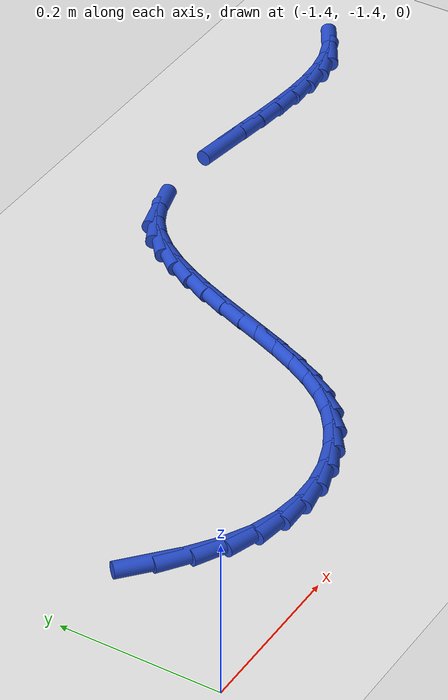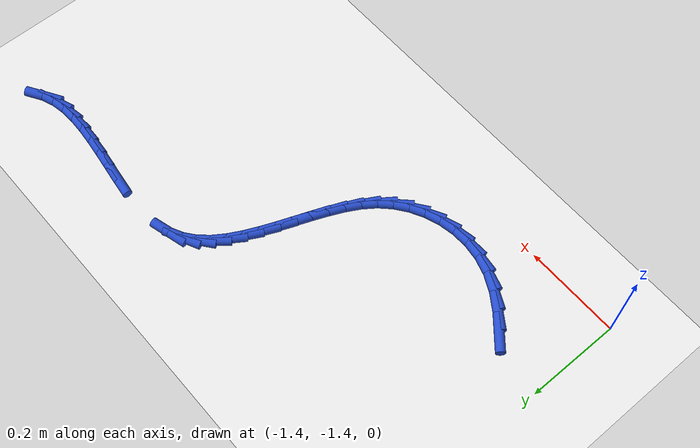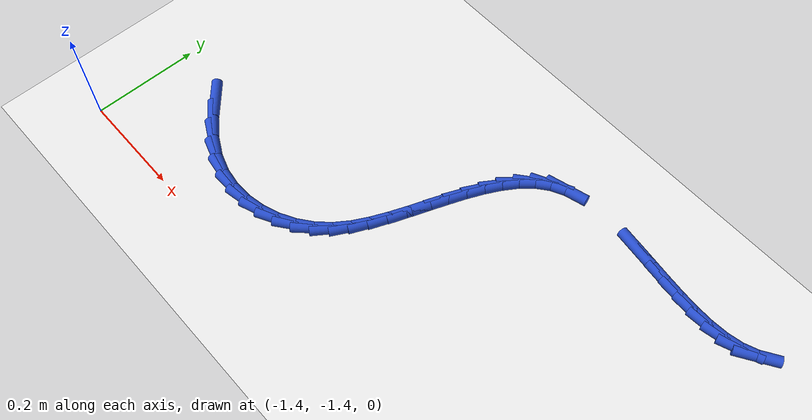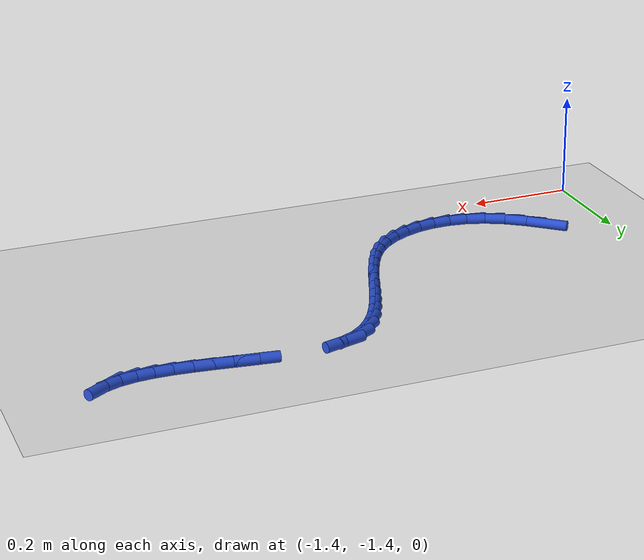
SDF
<sdf version="1.6">
 <world name="default">
  <model name="ground_plane">
   <static>1</static>
   <link name="link">
    <collision name="collision">
     <geometry><plane><normal>0 0 1</normal><size>100 100</size></plane></geometry>
     <surface><friction><ode><mu>100</mu><mu2>50</mu2></ode></friction></surface>
    </collision>
    <visual name="visual">
     <cast_shadows>0</cast_shadows>
     <geometry><plane><normal>0 0 1</normal><size>100 100</size></plane></geometry>
     <material>
      <script><uri>file://media/materials/scripts/gazebo.material</uri><name>Gazebo/WhiteGlow</name></script>
     </material>
    </visual>
   </link>
  </model>
  <model name="line">
   <link name="link_204">
    <pose>-1.2747357582555312 -1.2309211940022895 0.01 0 1.57 -0.7177747797868199</pose>
    <collision name="collision">
     <geometry><cylinder><radius>0.01</radius><length>0.08</length></cylinder></geometry>
    </collision>
    <visual name="visual">
     <material>
      <script><name>Gazebo/Blue</name><uri>file://media/materials/scripts/gazebo.material</uri></script>
     </material>
     <geometry><cylinder><radius>0.01</radius><length>0.08</length></cylinder></geometry>
    </visual>
   </link>
   <link name="link_205">
    <pose>-1.2416538626119809 -1.2598062738995015 0.01 0 1.57 -0.6163822276789551</pose>
    <collision name="collision">
     <geometry><cylinder><radius>0.01</radius><length>0.08</length></cylinder></geometry>
    </collision>
    <visual name="visual">
     <material>
      <script><name>Gazebo/Blue</name><uri>file://media/materials/scripts/gazebo.material</uri></script>
     </material>
     <geometry><cylinder><radius>0.01</radius><length>0.08</length></cylinder></geometry>
    </visual>
   </link>
   <link name="link_206">
    <pose>-1.2074891528682192 -1.2840106528345832 0.01 0 1.57 -0.4778129727852981</pose>
    <collision name="collision">
     <geometry><cylinder><radius>0.01</radius><length>0.08</length></cylinder></geometry>
    </collision>
    <visual name="visual">
     <material>
      <script><name>Gazebo/Blue</name><uri>file://media/materials/scripts/gazebo.material</uri></script>
     </material>
     <geometry><cylinder><radius>0.01</radius><length>0.08</length></cylinder></geometry>
    </visual>
   </link>
   <link name="link_207">
    <pose>-1.1724446965962085 -1.3021578712209303 0.01 0 1.57 -0.30827228383824723</pose>
    <collision name="collision">
     <geometry><cylinder><radius>0.01</radius><length>0.08</length></cylinder></geometry>
    </collision>
    <visual name="visual">
     <material>
      <script><name>Gazebo/Blue</name><uri>file://media/materials/scripts/gazebo.material</uri></script>
     </material>
     <geometry><cylinder><radius>0.01</radius><length>0.08</length></cylinder></geometry>
    </visual>
   </link>
   <link name="link_208">
    <pose>-1.1368587599532027 -1.3134892718625613 0.01 0 1.57 -0.13698847188008131</pose>
    <collision name="collision">
     <geometry><cylinder><radius>0.01</radius><length>0.08</length></cylinder></geometry>
    </collision>
    <visual name="visual">
     <material>
      <script><name>Gazebo/Blue</name><uri>file://media/materials/scripts/gazebo.material</uri></script>
     </material>
     <geometry><cylinder><radius>0.01</radius><length>0.08</length></cylinder></geometry>
    </visual>
   </link>
   <link name="link_209">
    <pose>-1.1013195696110947 -1.3183884151627252 0.01 0 1.57 0.02940968667789065</pose>
    <collision name="collision">
     <geometry><cylinder><radius>0.01</radius><length>0.08</length></cylinder></geometry>
    </collision>
    <visual name="visual">
     <material>
      <script><name>Gazebo/Blue</name><uri>file://media/materials/scripts/gazebo.material</uri></script>
     </material>
     <geometry><cylinder><radius>0.01</radius><length>0.08</length></cylinder></geometry>
    </visual>
   </link>
   <link name="link_210">
    <pose>-1.0664423854532337 -1.3173623922748308 0.01 0 1.57 0.18948813860903968</pose>
    <collision name="collision">
     <geometry><cylinder><radius>0.01</radius><length>0.08</length></cylinder></geometry>
    </collision>
    <visual name="visual">
     <material>
      <script><name>Gazebo/Blue</name><uri>file://media/materials/scripts/gazebo.material</uri></script>
     </material>
     <geometry><cylinder><radius>0.01</radius><length>0.08</length></cylinder></geometry>
    </visual>
   </link>
   <link name="link_211">
    <pose>-1.0328424673629635 -1.3109182943522866 0.01 0 1.57 0.3438911318449691</pose>
    <collision name="collision">
     <geometry><cylinder><radius>0.01</radius><length>0.08</length></cylinder></geometry>
    </collision>
    <visual name="visual">
     <material>
      <script><name>Gazebo/Blue</name><uri>file://media/materials/scripts/gazebo.material</uri></script>
     </material>
     <geometry><cylinder><radius>0.01</radius><length>0.08</length></cylinder></geometry>
    </visual>
   </link>
   <link name="link_212">
    <pose>-1.0011350752236337 -1.299563212548502 0.01 0 1.57 0.49489955885718473</pose>
    <collision name="collision">
     <geometry><cylinder><radius>0.01</radius><length>0.08</length></cylinder></geometry>
    </collision>
    <visual name="visual">
     <material>
      <script><name>Gazebo/Blue</name><uri>file://media/materials/scripts/gazebo.material</uri></script>
     </material>
     <geometry><cylinder><radius>0.01</radius><length>0.08</length></cylinder></geometry>
    </visual>
   </link>
   <link name="link_213">
    <pose>-0.9719354689185896 -1.2838042380168866 0.01 0 1.57 0.6459106959597302</pose>
    <collision name="collision">
     <geometry><cylinder><radius>0.01</radius><length>0.08</length></cylinder></geometry>
    </collision>
    <visual name="visual">
     <material>
      <script><name>Gazebo/Blue</name><uri>file://media/materials/scripts/gazebo.material</uri></script>
     </material>
     <geometry><cylinder><radius>0.01</radius><length>0.08</length></cylinder></geometry>
    </visual>
   </link>
   <link name="link_214">
    <pose>-0.9458589083311796 -1.2641484619108492 0.01 0 1.57 0.8009706186637506</pose>
    <collision name="collision">
     <geometry><cylinder><radius>0.01</radius><length>0.08</length></cylinder></geometry>
    </collision>
    <visual name="visual">
     <material>
      <script><name>Gazebo/Blue</name><uri>file://media/materials/scripts/gazebo.material</uri></script>
     </material>
     <geometry><cylinder><radius>0.01</radius><length>0.08</length></cylinder></geometry>
    </visual>
   </link>
   <link name="link_215">
    <pose>-0.923520185211498 -1.2411029374922329 0.01 0 1.57 0.9532339442158334</pose>
    <collision name="collision">
     <geometry><cylinder><radius>0.01</radius><length>0.08</length></cylinder></geometry>
    </collision>
    <visual name="visual">
     <material>
      <script><name>Gazebo/Blue</name><uri>file://media/materials/scripts/gazebo.material</uri></script>
     </material>
     <geometry><cylinder><radius>0.01</radius><length>0.08</length></cylinder></geometry>
    </visual>
   </link>
   <link name="link_216">
    <pose>-0.9050788765017054 -1.215137872098916 0.01 0 1.57 1.0678477538216484</pose>
    <collision name="collision">
     <geometry><cylinder><radius>0.01</radius><length>0.08</length></cylinder></geometry>
    </collision>
    <visual name="visual">
     <material>
      <script><name>Gazebo/Blue</name><uri>file://media/materials/scripts/gazebo.material</uri></script>
     </material>
     <geometry><cylinder><radius>0.01</radius><length>0.08</length></cylinder></geometry>
    </visual>
   </link>
   <link name="link_217">
    <pose>-0.8893889247084941 -1.1866178036598718 0.01 0 1.57 1.138732372397765</pose>
    <collision name="collision">
     <geometry><cylinder><radius>0.01</radius><length>0.08</length></cylinder></geometry>
    </collision>
    <visual name="visual">
     <material>
      <script><name>Gazebo/Blue</name><uri>file://media/materials/scripts/gazebo.material</uri></script>
     </material>
     <geometry><cylinder><radius>0.01</radius><length>0.08</length></cylinder></geometry>
    </visual>
   </link>
   <link name="link_218">
    <pose>-0.8752540314701585 -1.1559645067196749 0.01 0 1.57 1.181676721505915</pose>
    <collision name="collision">
     <geometry><cylinder><radius>0.01</radius><length>0.08</length></cylinder></geometry>
    </collision>
    <visual name="visual">
     <material>
      <script><name>Gazebo/Blue</name><uri>file://media/materials/scripts/gazebo.material</uri></script>
     </material>
     <geometry><cylinder><radius>0.01</radius><length>0.08</length></cylinder></geometry>
    </visual>
   </link>
   <link name="link_219">
    <pose>-0.8620879607587484 -1.1238541860136126 0.01 0 1.57 1.2029308681773778</pose>
    <collision name="collision">
     <geometry><cylinder><radius>0.01</radius><length>0.08</length></cylinder></geometry>
    </collision>
    <visual name="visual">
     <material>
      <script><name>Gazebo/Blue</name><uri>file://media/materials/scripts/gazebo.material</uri></script>
     </material>
     <geometry><cylinder><radius>0.01</radius><length>0.08</length></cylinder></geometry>
    </visual>
   </link>
   <link name="link_220">
    <pose>-0.8494318805697094 -1.0910161808964594 0.01 0 1.57 1.2042711374727912</pose>
    <collision name="collision">
     <geometry><cylinder><radius>0.01</radius><length>0.08</length></cylinder></geometry>
    </collision>
    <visual name="visual">
     <material>
      <script><name>Gazebo/Blue</name><uri>file://media/materials/scripts/gazebo.material</uri></script>
     </material>
     <geometry><cylinder><radius>0.01</radius><length>0.08</length></cylinder></geometry>
    </visual>
   </link>
   <link name="link_221">
    <pose>-0.8368269588984889 -1.0581798307229944 0.01 0 1.57 1.1857214741419528</pose>
    <collision name="collision">
     <geometry><cylinder><radius>0.01</radius><length>0.08</length></cylinder></geometry>
    </collision>
    <visual name="visual">
     <material>
      <script><name>Gazebo/Blue</name><uri>file://media/materials/scripts/gazebo.material</uri></script>
     </material>
     <geometry><cylinder><radius>0.01</radius><length>0.08</length></cylinder></geometry>
    </visual>
   </link>
   <link name="link_222">
    <pose>-0.8238143637405317 -1.0260744748479915 0.01 0 1.57 1.1455341873086116</pose>
    <collision name="collision">
     <geometry><cylinder><radius>0.01</radius><length>0.08</length></cylinder></geometry>
    </collision>
    <visual name="visual">
     <material>
      <script><name>Gazebo/Blue</name><uri>file://media/materials/scripts/gazebo.material</uri></script>
     </material>
     <geometry><cylinder><radius>0.01</radius><length>0.08</length></cylinder></geometry>
    </visual>
   </link>
   <link name="link_223">
    <pose>-0.8099352630912854 -0.9954294526262302 0.01 0 1.57 1.0800663390082006</pose>
    <collision name="collision">
     <geometry><cylinder><radius>0.01</radius><length>0.08</length></cylinder></geometry>
    </collision>
    <visual name="visual">
     <material>
      <script><name>Gazebo/Blue</name><uri>file://media/materials/scripts/gazebo.material</uri></script>
     </material>
     <geometry><cylinder><radius>0.01</radius><length>0.08</length></cylinder></geometry>
    </visual>
   </link>
   <link name="link_224">
    <pose>-0.794730824946196 -0.9669741034124854 0.01 0 1.57 0.9837599442334984</pose>
    <collision name="collision">
     <geometry><cylinder><radius>0.01</radius><length>0.08</length></cylinder></geometry>
    </collision>
    <visual name="visual">
     <material>
      <script><name>Gazebo/Blue</name><uri>file://media/materials/scripts/gazebo.material</uri></script>
     </material>
     <geometry><cylinder><radius>0.01</radius><length>0.08</length></cylinder></geometry>
    </visual>
   </link>
   <link name="link_225">
    <pose>-0.7777422173007098 -0.9414377665615347 0.01 0 1.57 0.8499097412556491</pose>
    <collision name="collision">
     <geometry><cylinder><radius>0.01</radius><length>0.08</length></cylinder></geometry>
    </collision>
    <visual name="visual">
     <material>
      <script><name>Gazebo/Blue</name><uri>file://media/materials/scripts/gazebo.material</uri></script>
     </material>
     <geometry><cylinder><radius>0.01</radius><length>0.08</length></cylinder></geometry>
    </visual>
   </link>
   <link name="link_226">
    <pose>-0.7585106081502732 -0.9195497814281541 0.01 0 1.57 0.6737265195105865</pose>
    <collision name="collision">
     <geometry><cylinder><radius>0.01</radius><length>0.08</length></cylinder></geometry>
    </collision>
    <visual name="visual">
     <material>
      <script><name>Gazebo/Blue</name><uri>file://media/materials/scripts/gazebo.material</uri></script>
     </material>
     <geometry><cylinder><radius>0.01</radius><length>0.08</length></cylinder></geometry>
    </visual>
   </link>
   <link name="link_227">
    <pose>-0.7365771654903319 -0.9020394873671204 0.01 0 1.57 0.46317050716609953</pose>
    <collision name="collision">
     <geometry><cylinder><radius>0.01</radius><length>0.08</length></cylinder></geometry>
    </collision>
    <visual name="visual">
     <material>
      <script><name>Gazebo/Blue</name><uri>file://media/materials/scripts/gazebo.material</uri></script>
     </material>
     <geometry><cylinder><radius>0.01</radius><length>0.08</length></cylinder></geometry>
    </visual>
   </link>
   <link name="link_228">
    <pose>-0.7115447924978126 -0.8895382260504301 0.01 0 1.57 0.2707442664763113</pose>
    <collision name="collision">
     <geometry><cylinder><radius>0.01</radius><length>0.08</length></cylinder></geometry>
    </collision>
    <visual name="visual">
     <material>
      <script><name>Gazebo/Blue</name><uri>file://media/materials/scripts/gazebo.material</uri></script>
     </material>
     <geometry><cylinder><radius>0.01</radius><length>0.08</length></cylinder></geometry>
    </visual>
   </link>
   <link name="link_233">
    <pose>-0.5519759060700501 -0.8830314556506581 0.01 0 1.57 -0.12903144545641548</pose>
    <collision name="collision">
     <geometry><cylinder><radius>0.01</radius><length>0.08</length></cylinder></geometry>
    </collision>
    <visual name="visual">
     <material>
      <script><name>Gazebo/Blue</name><uri>file://media/materials/scripts/gazebo.material</uri></script>
     </material>
     <geometry><cylinder><radius>0.01</radius><length>0.08</length></cylinder></geometry>
    </visual>
   </link>
   <link name="link_234">
    <pose>-0.5165229538775155 -0.887631558913098 0.01 0 1.57 -0.13431791224189557</pose>
    <collision name="collision">
     <geometry><cylinder><radius>0.01</radius><length>0.08</length></cylinder></geometry>
    </collision>
    <visual name="visual">
     <material>
      <script><name>Gazebo/Blue</name><uri>file://media/materials/scripts/gazebo.material</uri></script>
     </material>
     <geometry><cylinder><radius>0.01</radius><length>0.08</length></cylinder></geometry>
    </visual>
   </link>
   <link name="link_235">
    <pose>-0.4810053326879379 -0.8924311097959612 0.01 0 1.57 -0.1202399029204785</pose>
    <collision name="collision">
     <geometry><cylinder><radius>0.01</radius><length>0.08</length></cylinder></geometry>
    </collision>
    <visual name="visual">
     <material>
      <script><name>Gazebo/Blue</name><uri>file://media/materials/scripts/gazebo.material</uri></script>
     </material>
     <geometry><cylinder><radius>0.01</radius><length>0.08</length></cylinder></geometry>
    </visual>
   </link>
   <link name="link_236">
    <pose>-0.44590092363215245 -0.8966725205162298 0.01 0 1.57 -0.08530545812507868</pose>
    <collision name="collision">
     <geometry><cylinder><radius>0.01</radius><length>0.08</length></cylinder></geometry>
    </collision>
    <visual name="visual">
     <material>
      <script><name>Gazebo/Blue</name><uri>file://media/materials/scripts/gazebo.material</uri></script>
     </material>
     <geometry><cylinder><radius>0.01</radius><length>0.08</length></cylinder></geometry>
    </visual>
   </link>
   <link name="link_237">
    <pose>-0.4116876078409978 -0.8995982032908858 0.01 0 1.57 -0.025945893054478527</pose>
    <collision name="collision">
     <geometry><cylinder><radius>0.01</radius><length>0.08</length></cylinder></geometry>
    </collision>
    <visual name="visual">
     <material>
      <script><name>Gazebo/Blue</name><uri>file://media/materials/scripts/gazebo.material</uri></script>
     </material>
     <geometry><cylinder><radius>0.01</radius><length>0.08</length></cylinder></geometry>
    </visual>
   </link>
   <link name="link_238">
    <pose>-0.3788432664453081 -0.9004505703369116 0.01 0 1.57 0.06374246230772518</pose>
    <collision name="collision">
     <geometry><cylinder><radius>0.01</radius><length>0.08</length></cylinder></geometry>
    </collision>
    <visual name="visual">
     <material>
      <script><name>Gazebo/Blue</name><uri>file://media/materials/scripts/gazebo.material</uri></script>
     </material>
     <geometry><cylinder><radius>0.01</radius><length>0.08</length></cylinder></geometry>
    </visual>
   </link>
   <link name="link_239">
    <pose>-0.3478457805759215 -0.8984720338712892 0.01 0 1.57 0.1917714597532437</pose>
    <collision name="collision">
     <geometry><cylinder><radius>0.01</radius><length>0.08</length></cylinder></geometry>
    </collision>
    <visual name="visual">
     <material>
      <script><name>Gazebo/Blue</name><uri>file://media/materials/scripts/gazebo.material</uri></script>
     </material>
     <geometry><cylinder><radius>0.01</radius><length>0.08</length></cylinder></geometry>
    </visual>
   </link>
   <link name="link_240">
    <pose>-0.3191730313636726 -0.8929050061110007 0.01 0 1.57 0.36463561125100263</pose>
    <collision name="collision">
     <geometry><cylinder><radius>0.01</radius><length>0.08</length></cylinder></geometry>
    </collision>
    <visual name="visual">
     <material>
      <script><name>Gazebo/Blue</name><uri>file://media/materials/scripts/gazebo.material</uri></script>
     </material>
     <geometry><cylinder><radius>0.01</radius><length>0.08</length></cylinder></geometry>
    </visual>
   </link>
   <link name="link_241">
    <pose>-0.29328336251182807 -0.8830228024685994 0.01 0 1.57 0.5567816417586381</pose>
    <collision name="collision">
     <geometry><cylinder><radius>0.01</radius><length>0.08</length></cylinder></geometry>
    </collision>
    <visual name="visual">
     <material>
      <script><name>Gazebo/Blue</name><uri>file://media/materials/scripts/gazebo.material</uri></script>
     </material>
     <geometry><cylinder><radius>0.01</radius><length>0.08</length></cylinder></geometry>
    </visual>
   </link>
  </model>
 </world>
</sdf>
